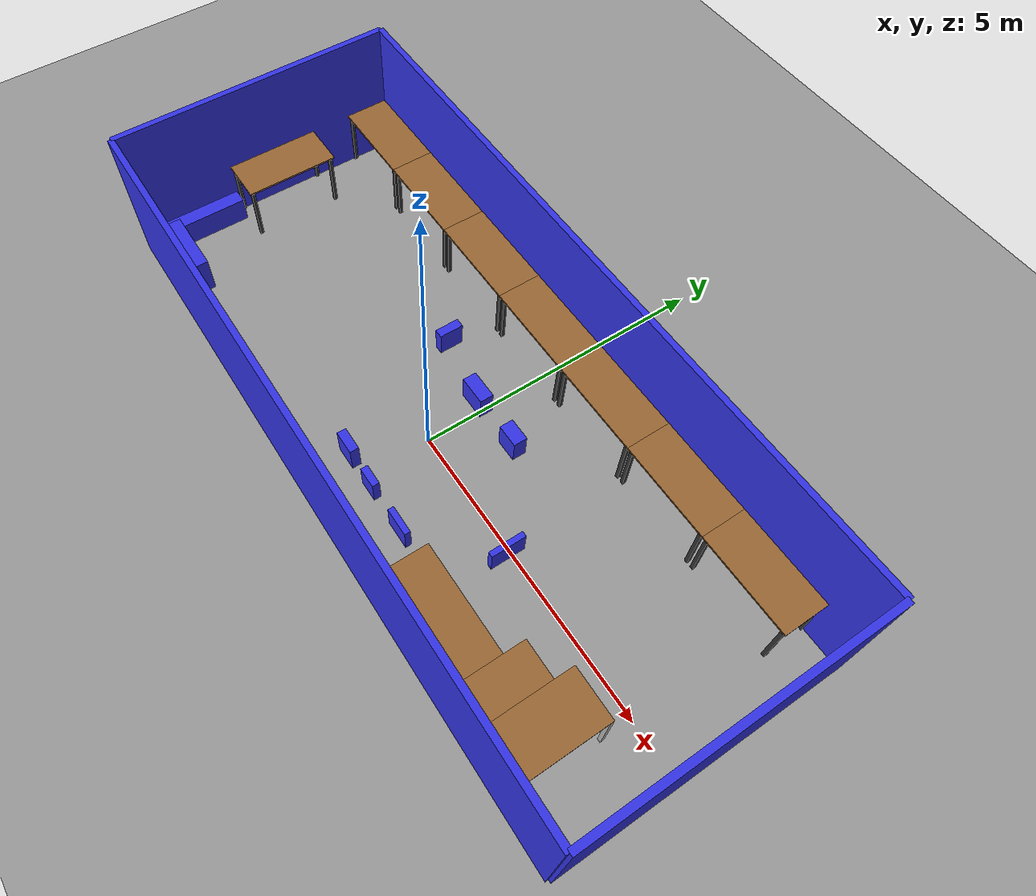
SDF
<?xml version="1.0" ?>
<sdf version="1.7">
  <world name="custom_room">

    <!-- PHYSICS -->
    <physics name="real_time_physics" type="dart">
      <max_step_size>0.001</max_step_size>
      <real_time_factor>1.0</real_time_factor>
      <real_time_update_rate>1000</real_time_update_rate>
      <gravity>0 0 -9.81</gravity>
    </physics>

    <plugin filename="gz-sim-physics-system" name="gz::sim::systems::Physics">
      <engine>dart</engine>
    </plugin>
    <plugin filename="gz-sim-synchronize-system" name="gz::sim::systems::Synchronize">
      <use_sim_time>true</use_sim_time>
    </plugin>
    <plugin filename="gz-sim-user-commands-system" name="gz::sim::systems::UserCommands"/>
    <plugin filename="gz-sim-scene-broadcaster-system" name="gz::sim::systems::SceneBroadcaster"/>
    <plugin filename="gz-sim-sensors-system" name="gz::sim::systems::Sensors">
      <render_engine>ogre2</render_engine>
      <update_rate>1000</update_rate>
    </plugin>
    <plugin filename="gz-sim-imu-system" name="gz::sim::systems::Imu"/>

    <!-- LIGHTS -->
    <light type="directional" name="sun">
      <cast_shadows>true</cast_shadows>
      <pose>0 0 10 0 -0.5 0</pose>
      <diffuse>1 1 1 1</diffuse>
      <specular>0.1 0.1 0.1 1</specular>
      <direction>-0.5 0.5 -1</direction>
    </light>

    <light type="point" name="ceiling_light">
      <pose>0 0 5 0 0 0</pose>
      <diffuse>1 1 1 1</diffuse>
      <specular>0.2 0.2 0.2 1</specular>
      <attenuation>
        <range>30</range>
        <constant>0.3</constant>
        <linear>0.01</linear>
        <quadratic>0.001</quadratic>
      </attenuation>
      <cast_shadows>true</cast_shadows>
    </light>

    <!-- GROUND -->
    <model name="ground_plane">
      <static>true</static>
      <link name="link">
        <collision name="collision">
          <geometry>
            <plane>
              <normal>0 0 1</normal>
              <size>20 20</size>
            </plane>
          </geometry>
        </collision>
        <visual name="visual">
          <geometry>
            <plane>
              <normal>0 0 1</normal>
              <size>20 20</size>
            </plane>
          </geometry>
          <material>
            <ambient>0.6 0.6 0.6 1</ambient>
            <diffuse>0.6 0.6 0.6 1</diffuse>
          </material>
        </visual>
      </link>
    </model>

    <!-- WALLS (odbicie Y -> -Y) -->
    <model name="wall_left">
      <static>true</static>
      <link name="link">
        <pose>-5.89 0.4 1.25 0 0 0</pose>
        <collision name="collision">
          <geometry><box><size>0.1 4.8 2.5</size></box></geometry>
        </collision>
        <visual name="visual">
          <geometry><box><size>0.1 4.8 2.5</size></box></geometry>
          <material>
            <ambient>0.2 0.2 0.9 1</ambient>
            <diffuse>0.2 0.2 0.9 1</diffuse>
          </material>
        </visual>
      </link>
    </model>

    <model name="wall_right">
      <static>true</static>
      <link name="link">
        <pose>5.89 0.4 1.25 0 0 0</pose>
        <collision name="collision">
          <geometry><box><size>0.1 4.8 2.5</size></box></geometry>
        </collision>
        <visual name="visual">
          <geometry><box><size>0.1 4.8 2.5</size></box></geometry>
          <material>
            <ambient>0.2 0.2 0.9 1</ambient>
            <diffuse>0.2 0.2 0.9 1</diffuse>
          </material>
        </visual>
      </link>
    </model>

    <model name="wall_bottom">
      <static>true</static>
      <link name="link">
        <pose>0 2.8 1.25 0 0 0</pose>
        <collision name="collision">
          <geometry><box><size>11.78 0.1 2.5</size></box></geometry>
        </collision>
        <visual name="visual">
          <geometry><box><size>11.78 0.1 2.5</size></box></geometry>
          <material>
            <ambient>0.2 0.2 0.9 1</ambient>
            <diffuse>0.2 0.2 0.9 1</diffuse>
          </material>
        </visual>
      </link>
    </model>

    <model name="wall_top">
      <static>true</static>
      <link name="link">
        <pose>0 -2.0 1.25 0 0 0</pose>
        <collision name="collision">
          <geometry><box><size>11.78 0.1 2.5</size></box></geometry>
        </collision>
        <visual name="visual">
          <geometry><box><size>11.78 0.1 2.5</size></box></geometry>
          <material>
            <ambient>0.2 0.2 0.9 1</ambient>
            <diffuse>0.2 0.2 0.9 1</diffuse>
          </material>
        </visual>
      </link>
    </model>
    <!-- SINK (zlew) – odbity w osi X (Y -> -Y) -->
    <model name="sink">
      <static>true</static>
      <pose>-5.05 -1.7 0.25 0 0 0</pose>
      <link name="link">
        <collision name="collision">
          <geometry>
            <box><size>1.10 0.50 0.8</size></box>
          </geometry>
        </collision>
        <visual name="visual">
          <geometry>
            <box><size>1.10 0.50 0.8</size></box>
          </geometry>
          <material>
            <ambient>0.2 0.2 0.9 1</ambient>
            <diffuse>0.2 0.2 0.9 1</diffuse>
          </material>
        </visual>
      </link>
    </model>

    <!-- TABLE -->
    <model name="table1_real">
  <static>true</static>

  <!-- BLAT -->
  <link name="top">
    <pose>2.685 -1.56 1.015 0 0 0</pose>
    <collision name="collision">
      <geometry><box><size>1.76 0.88 0.03</size></box></geometry>
    </collision>
    <visual name="visual">
      <geometry><box><size>1.76 0.88 0.03</size></box></geometry>
      <material>
        <ambient>0.6 0.4 0.2 1</ambient>
        <diffuse>0.6 0.4 0.2 1</diffuse>
      </material>
    </visual>
  </link>

  <!-- NOGI -->
  <link name="leg_fl">
    <pose>3.535 -1.15 0.5 0 0 0</pose>
    <collision name="collision"><geometry><box><size>0.06 0.06 1.0</size></box></geometry></collision>
    <visual name="visual"><geometry><box><size>0.06 0.06 1.0</size></box></geometry></visual>
  </link>

  <link name="leg_fr">
    <pose>3.535 -1.97 0.5 0 0 0</pose>
    <collision name="collision"><geometry><box><size>0.06 0.06 1.0</size></box></geometry></collision>
    <visual name="visual"><geometry><box><size>0.06 0.06 1.0</size></box></geometry></visual>
  </link>

  <link name="leg_bl">
    <pose>1.835 -1.15 0.5 0 0 0</pose>
    <collision name="collision"><geometry><box><size>0.06 0.06 1.0</size></box></geometry></collision>
    <visual name="visual"><geometry><box><size>0.06 0.06 1.0</size></box></geometry></visual>
  </link>

  <link name="leg_br">
    <pose>1.835 -1.97 0.5 0 0 0</pose>
    <collision name="collision"><geometry><box><size>0.06 0.06 1.0</size></box></geometry></collision>
    <visual name="visual"><geometry><box><size>0.06 0.06 1.0</size></box></geometry></visual>
  </link>

</model>

    <model name="table2_real">
  <static>true</static>

  <!-- BLAT -->
  <link name="top">
    <pose>3.865 -1.385 1.015 0 0 0</pose>
    <collision name="collision"><geometry><box><size>0.60 1.23 0.03</size></box></geometry></collision>
    <visual name="visual">
      <geometry><box><size>0.60 1.23 0.03</size></box></geometry>
      <material><ambient>0.6 0.4 0.2 1</ambient><diffuse>0.6 0.4 0.2 1</diffuse></material>
    </visual>
  </link>

  <!-- NOGI -->
  <link name="leg_fl">
    <pose>4.135 -0.800 0.5 0 0 0</pose>
    <collision name="collision"><geometry><box><size>0.06 0.06 1.0</size></box></geometry></collision>
    <visual name="visual"><geometry><box><size>0.06 0.06 1.0</size></box></geometry></visual>
  </link>

  <link name="leg_fr">
    <pose>4.135 -1.970 0.5 0 0 0</pose>
    <collision name="collision"><geometry><box><size>0.06 0.06 1.0</size></box></geometry></collision>
    <visual name="visual"><geometry><box><size>0.06 0.06 1.0</size></box></geometry></visual>
  </link>

  <link name="leg_bl">
    <pose>3.595 -0.800 0.5 0 0 0</pose>
    <collision name="collision"><geometry><box><size>0.06 0.06 1.0</size></box></geometry></collision>
    <visual name="visual"><geometry><box><size>0.06 0.06 1.0</size></box></geometry></visual>
  </link>

  <link name="leg_br">
    <pose>3.595 -1.970 0.5 0 0 0</pose>
    <collision name="collision"><geometry><box><size>0.06 0.06 1.0</size></box></geometry></collision>
    <visual name="visual"><geometry><box><size>0.06 0.06 1.0</size></box></geometry></visual>
  </link>

</model>

    <model name="table3_real">
  <static>true</static>

  <!-- BLAT -->
  <link name="top">
    <pose>4.565 -1.225 1.015 0 0 0</pose>
    <collision name="collision"><geometry><box><size>0.80 1.55 0.03</size></box></geometry></collision>
    <visual name="visual">
      <geometry><box><size>0.80 1.55 0.03</size></box></geometry>
      <material><ambient>0.6 0.4 0.2 1</ambient><diffuse>0.6 0.4 0.2 1</diffuse></material>
    </visual>
  </link>

  <!-- NOGI -->
  <link name="leg_fl">
    <pose>4.935 -0.480 0.5 0 0 0</pose>
    <collision name="collision"><geometry><box><size>0.06 0.06 1.0</size></box></geometry></collision>
    <visual name="visual"><geometry><box><size>0.06 0.06 1.0</size></box></geometry></visual>
  </link>

  <link name="leg_fr">
    <pose>4.935 -1.970 0.5 0 0 0</pose>
    <collision name="collision"><geometry><box><size>0.06 0.06 1.0</size></box></geometry></collision>
    <visual name="visual"><geometry><box><size>0.06 0.06 1.0</size></box></geometry></visual>
  </link>

  <link name="leg_bl">
    <pose>4.195 -0.480 0.5 0 0 0</pose>
    <collision name="collision"><geometry><box><size>0.06 0.06 1.0</size></box></geometry></collision>
    <visual name="visual"><geometry><box><size>0.06 0.06 1.0</size></box></geometry></visual>
  </link>

  <link name="leg_br">
    <pose>4.195 -1.970 0.5 0 0 0</pose>
    <collision name="collision"><geometry><box><size>0.06 0.06 1.0</size></box></geometry></collision>
    <visual name="visual"><geometry><box><size>0.06 0.06 1.0</size></box></geometry></visual>
  </link>

</model>

    <!-- BOXES -->
    <model name="box1">
      <static>true</static>
      <pose> -0.415 -1.145 0.25 0 0 0</pose>
      <link name="link">
        <collision name="collision">
          <geometry><box><size>0.39 0.15 0.5</size></box></geometry>
        </collision>
        <visual name="visual">
          <geometry><box><size>0.39 0.15 0.5</size></box></geometry>
          <material>
            <ambient>0.2 0.2 0.9 1</ambient>
            <diffuse>0.2 0.2 0.9 1</diffuse>
          </material>
        </visual>
      </link>
    </model>

    <model name="box2">
      <static>true</static>
      <pose> 0.255 -1.16 0.25 0 0 0</pose>
      <link name="link">
        <collision name="collision">
          <geometry><box><size>0.34 0.12 0.45</size></box></geometry>
        </collision>
        <visual name="visual">
          <geometry><box><size>0.34 0.12 0.45</size></box></geometry>
          <material>
            <ambient>0.2 0.2 0.9 1</ambient>
            <diffuse>0.2 0.2 0.9 1</diffuse>
          </material>
        </visual>
      </link>
    </model>

    <model name="box3">
      <static>true</static>
      <pose> 1.085 -1.17 0.25 0 0 0</pose>
      <link name="link">
        <collision name="collision">
          <geometry><box><size>0.46 0.1 0.45</size></box></geometry>
        </collision>
        <visual name="visual">
          <geometry><box><size>0.46 0.1 0.45</size></box></geometry>
          <material>
            <ambient>0.2 0.2 0.9 1</ambient>
            <diffuse>0.2 0.2 0.9 1</diffuse>
          </material>
        </visual>
      </link>
    </model>

    <model name="box4">
  <static>true</static>
  <pose>-5.74 -1.15 0.225 0 0 -1.57</pose>
  <link name="link">
    <collision name="collision">
      <geometry>
        <box><size>1.7 0.3 0.45</size></box>
      </geometry>
    </collision>
    <visual name="visual">
      <geometry>
        <box><size>1.7 0.3 0.45</size></box>
      </geometry>
      <material>
        <ambient>0.2 0.2 0.9 1</ambient>
        <diffuse>0.2 0.2 0.9 1</diffuse>
      </material>
    </visual>
  </link>
</model>

<model name="box6">
  <static>true</static>
  <pose>2.2 -0.08 0.225 0 0 -1.57</pose>
  <link name="link">
    <collision name="collision">
      <geometry>
        <box><size>0.58 0.09 0.45</size></box>
      </geometry>
    </collision>
    <visual name="visual">
      <geometry>
        <box><size>0.58 0.09 0.45</size></box>
      </geometry>
      <material>
        <ambient>0.2 0.2 0.9 1</ambient>
        <diffuse>0.2 0.2 0.9 1</diffuse>
      </material>
    </visual>
  </link>
</model>

<model name="box7">
  <static>true</static>
  <pose>-1.345 1.235 0.225 0 0 -1.57</pose>
  <link name="link">
    <collision name="collision">
      <geometry>
        <box><size>0.41 0.15 0.45</size></box>
      </geometry>
    </collision>
    <visual name="visual">
      <geometry>
        <box><size>0.41 0.15 0.45</size></box>
      </geometry>
      <material>
        <ambient>0.2 0.2 0.9 1</ambient>
        <diffuse>0.2 0.2 0.9 1</diffuse>
      </material>
    </visual>
  </link>
</model>

<model name="box8">
  <static>true</static>
  <pose>-0.1675 1.005 0.225 0 0 -1.57</pose>
  <link name="link">
    <collision name="collision">
      <geometry>
        <box><size>0.23 0.485 0.45</size></box>
      </geometry>
    </collision>
    <visual name="visual">
      <geometry>
        <box><size>0.23 0.485 0.45</size></box>
      </geometry>
      <material>
        <ambient>0.2 0.2 0.9 1</ambient>
        <diffuse>0.2 0.2 0.9 1</diffuse>
      </material>
    </visual>
  </link>
</model>

<model name="box9">
  <static>true</static>
  <pose>0.78 1.005 0.225 0 0 -1.57</pose>
  <link name="link">
    <collision name="collision">
      <geometry>
        <box><size>0.23 0.38 0.45</size></box>
      </geometry>
    </collision>
    <visual name="visual">
      <geometry>
        <box><size>0.23 0.38 0.45</size></box>
      </geometry>
      <material>
        <ambient>0.2 0.2 0.9 1</ambient>
        <diffuse>0.2 0.2 0.9 1</diffuse>
      </material>
    </visual>
  </link>
</model>

<model name="table_rotated">
  <static>true</static>

  <!-- BLAT -->
  <link name="top">
    <!-- blat jest obrócony o 90° wokół Z -->
    <pose>-5.49 0.5 1.015 0 0 1.57</pose>
    <collision name="collision">
      <geometry>
        <box><size>1.6 0.8 0.03</size></box>
      </geometry>
    </collision>
    <visual name="visual">
      <geometry>
        <box><size>1.6 0.8 0.03</size></box>
      </geometry>
      <material>
        <ambient>0.6 0.4 0.2 1</ambient>
        <diffuse>0.6 0.4 0.2 1</diffuse>
      </material>
    </visual>
  </link>

  <!-- NOGI -->

  <!-- FL -->
  <link name="leg_fl">
    <pose>-5.83 1.24 0.5 0 0 1.57</pose>
    <collision name="collision">
      <geometry><box><size>0.06 0.06 1.0</size></box></geometry>
    </collision>
    <visual name="visual">
      <geometry><box><size>0.06 0.06 1.0</size></box></geometry>
      <material>
        <ambient>0.2 0.2 0.2 1</ambient>
        <diffuse>0.2 0.2 0.2 1</diffuse>
      </material>
    </visual>
  </link>

  <!-- FR -->
  <link name="leg_fr">
    <pose>-5.15 1.24 0.5 0 0 1.57</pose>
    <collision name="collision">
      <geometry><box><size>0.06 0.06 1.0</size></box></geometry>
    </collision>
    <visual name="visual">
      <geometry><box><size>0.06 0.06 1.0</size></box></geometry>
      <material>
        <ambient>0.2 0.2 0.2 1</ambient>
        <diffuse>0.2 0.2 0.2 1</diffuse>
      </material>
    </visual>
  </link>

  <!-- BL -->
  <link name="leg_bl">
    <pose>-5.83 -0.24 0.5 0 0 1.57</pose>
    <collision name="collision">
      <geometry><box><size>0.06 0.06 1.0</size></box></geometry>
    </collision>
    <visual name="visual">
      <geometry><box><size>0.06 0.06 1.0</size></box></geometry>
      <material>
        <ambient>0.2 0.2 0.2 1</ambient>
        <diffuse>0.2 0.2 0.2 1</diffuse>
      </material>
    </visual>
  </link>

  <!-- BR -->
  <link name="leg_br">
    <pose>-5.15 -0.24 0.5 0 0 1.57</pose>
    <collision name="collision">
      <geometry><box><size>0.06 0.06 1.0</size></box></geometry>
    </collision>
    <visual name="visual">
      <geometry><box><size>0.06 0.06 1.0</size></box></geometry>
      <material>
        <ambient>0.2 0.2 0.2 1</ambient>
        <diffuse>0.2 0.2 0.2 1</diffuse>
      </material>
    </visual>
  </link>

</model>

<model name="table_oriented_like_first_shifted">
  <static>true</static>

  <!-- BLAT -->
  <link name="top">
    <pose>-5.09 2.4 1.015 0 0 0</pose>
    <collision name="collision">
      <geometry>
        <box><size>1.6 0.8 0.03</size></box>
      </geometry>
    </collision>
    <visual name="visual">
      <geometry>
        <box><size>1.6 0.8 0.03</size></box>
      </geometry>
      <material>
        <ambient>0.6 0.4 0.2 1</ambient>
        <diffuse>0.6 0.4 0.2 1</diffuse>
      </material>
    </visual>
  </link>

  <!-- NOGI -->

  <!-- Front Left -->
  <link name="leg_fl">
    <pose>-4.35 2.74 0.5 0 0 0</pose>
    <collision name="collision">
      <geometry><box><size>0.06 0.06 1.0</size></box></geometry>
    </collision>
    <visual name="visual">
      <geometry><box><size>0.06 0.06 1.0</size></box></geometry>
      <material><ambient>0.2 0.2 0.2 1</ambient><diffuse>0.2 0.2 0.2 1</diffuse></material>
    </visual>
  </link>

  <!-- Front Right -->
  <link name="leg_fr">
    <pose>-4.35 2.06 0.5 0 0 0</pose>
    <collision name="collision">
      <geometry><box><size>0.06 0.06 1.0</size></box></geometry>
    </collision>
    <visual name="visual">
      <geometry><box><size>0.06 0.06 1.0</size></box></geometry>
      <material><ambient>0.2 0.2 0.2 1</ambient><diffuse>0.2 0.2 0.2 1</diffuse></material>
    </visual>
  </link>

  <!-- Back Left -->
  <link name="leg_bl">
    <pose>-5.83 2.74 0.5 0 0 0</pose>
    <collision name="collision">
      <geometry><box><size>0.06 0.06 1.0</size></box></geometry>
    </collision>
    <visual name="visual">
      <geometry><box><size>0.06 0.06 1.0</size></box></geometry>
      <material><ambient>0.2 0.2 0.2 1</ambient><diffuse>0.2 0.2 0.2 1</diffuse></material>
    </visual>
  </link>

  <!-- Back Right -->
  <link name="leg_br">
    <pose>-5.83 2.06 0.5 0 0 0</pose>
    <collision name="collision">
      <geometry><box><size>0.06 0.06 1.0</size></box></geometry>
    </collision>
    <visual name="visual">
      <geometry><box><size>0.06 0.06 1.0</size></box></geometry>
      <material><ambient>0.2 0.2 0.2 1</ambient><diffuse>0.2 0.2 0.2 1</diffuse></material>
    </visual>
  </link>

</model>

<model name="table_oriented_like_first_shifted2">
  <static>true</static>

  <!-- BLAT -->
  <link name="top">
    <pose>-3.49 2.4 1.015 0 0 0</pose>
    <collision name="collision">
      <geometry>
        <box><size>1.6 0.8 0.03</size></box>
      </geometry>
    </collision>
    <visual name="visual">
      <geometry>
        <box><size>1.6 0.8 0.03</size></box>
      </geometry>
      <material>
        <ambient>0.6 0.4 0.2 1</ambient>
        <diffuse>0.6 0.4 0.2 1</diffuse>
      </material>
    </visual>
  </link>

  <!-- NOGI -->

  <!-- Front Left -->
  <link name="leg_fl">
    <pose>-2.75 2.74 0.5 0 0 0</pose>
    <collision name="collision">
      <geometry><box><size>0.06 0.06 1.0</size></box></geometry>
    </collision>
    <visual name="visual">
      <geometry><box><size>0.06 0.06 1.0</size></box></geometry>
      <material><ambient>0.2 0.2 0.2 1</ambient><diffuse>0.2 0.2 0.2 1</diffuse></material>
    </visual>
  </link>

  <!-- Front Right -->
  <link name="leg_fr">
    <pose>-2.75 2.06 0.5 0 0 0</pose>
    <collision name="collision">
      <geometry><box><size>0.06 0.06 1.0</size></box></geometry>
    </collision>
    <visual name="visual">
      <geometry><box><size>0.06 0.06 1.0</size></box></geometry>
      <material><ambient>0.2 0.2 0.2 1</ambient><diffuse>0.2 0.2 0.2 1</diffuse></material>
    </visual>
  </link>

  <!-- Back Left -->
  <link name="leg_bl">
    <pose>-4.23 2.74 0.5 0 0 0</pose>
    <collision name="collision">
      <geometry><box><size>0.06 0.06 1.0</size></box></geometry>
    </collision>
    <visual name="visual">
      <geometry><box><size>0.06 0.06 1.0</size></box></geometry>
      <material><ambient>0.2 0.2 0.2 1</ambient><diffuse>0.2 0.2 0.2 1</diffuse></material>
    </visual>
  </link>

  <!-- Back Right -->
  <link name="leg_br">
    <pose>-4.23 2.06 0.5 0 0 0</pose>
    <collision name="collision">
      <geometry><box><size>0.06 0.06 1.0</size></box></geometry>
    </collision>
    <visual name="visual">
      <geometry><box><size>0.06 0.06 1.0</size></box></geometry>
      <material><ambient>0.2 0.2 0.2 1</ambient><diffuse>0.2 0.2 0.2 1</diffuse></material>
    </visual>
  </link>

</model>

<model name="table_1">
  <static>true</static>

  <!-- BLAT -->
  <link name="top">
    <pose>-1.89 2.4 1.015 0 0 0</pose>
    <collision name="collision">
      <geometry>
        <box><size>1.6 0.8 0.03</size></box>
      </geometry>
    </collision>
    <visual name="visual">
      <geometry>
        <box><size>1.6 0.8 0.03</size></box>
      </geometry>
      <material>
        <ambient>0.6 0.4 0.2 1</ambient>
        <diffuse>0.6 0.4 0.2 1</diffuse>
      </material>
    </visual>
  </link>

  <!-- NOGI -->
  <link name="leg_fl">
    <pose>-1.15 2.74 0.5 0 0 0</pose>
    <collision name="collision">
      <geometry>
        <box><size>0.06 0.06 1.0</size></box>
      </geometry>
    </collision>
    <visual name="visual">
      <geometry>
        <box><size>0.06 0.06 1.0</size></box>
      </geometry>
      <material>
        <ambient>0.2 0.2 0.2 1</ambient>
        <diffuse>0.2 0.2 0.2 1</diffuse>
      </material>
    </visual>
  </link>

  <link name="leg_fr">
    <pose>-1.15 2.06 0.5 0 0 0</pose>
    <collision name="collision">
      <geometry>
        <box><size>0.06 0.06 1.0</size></box>
      </geometry>
    </collision>
    <visual name="visual">
      <geometry>
        <box><size>0.06 0.06 1.0</size></box>
      </geometry>
      <material>
        <ambient>0.2 0.2 0.2 1</ambient>
        <diffuse>0.2 0.2 0.2 1</diffuse>
      </material>
    </visual>
  </link>

  <link name="leg_bl">
    <pose>-2.63 2.74 0.5 0 0 0</pose>
    <collision name="collision">
      <geometry>
        <box><size>0.06 0.06 1.0</size></box>
      </geometry>
    </collision>
    <visual name="visual">
      <geometry>
        <box><size>0.06 0.06 1.0</size></box>
      </geometry>
      <material>
        <ambient>0.2 0.2 0.2 1</ambient>
        <diffuse>0.2 0.2 0.2 1</diffuse>
      </material>
    </visual>
  </link>

  <link name="leg_br">
    <pose>-2.63 2.06 0.5 0 0 0</pose>
    <collision name="collision">
      <geometry>
        <box><size>0.06 0.06 1.0</size></box>
      </geometry>
    </collision>
    <visual name="visual">
      <geometry>
        <box><size>0.06 0.06 1.0</size></box>
      </geometry>
      <material>
        <ambient>0.2 0.2 0.2 1</ambient>
        <diffuse>0.2 0.2 0.2 1</diffuse>
      </material>
    </visual>
  </link>

</model>

<model name="table_2">
  <static>true</static>

  <!-- BLAT -->
  <link name="top">
    <pose>-0.29 2.4 1.015 0 0 0</pose>
    <collision name="collision">
      <geometry>
        <box><size>1.6 0.8 0.03</size></box>
      </geometry>
    </collision>
    <visual name="visual">
      <geometry>
        <box><size>1.6 0.8 0.03</size></box>
      </geometry>
      <material>
        <ambient>0.6 0.4 0.2 1</ambient>
        <diffuse>0.6 0.4 0.2 1</diffuse>
      </material>
    </visual>
  </link>

  <!-- NOGI -->
  <link name="leg_fl">
    <pose>0.45 2.74 0.5 0 0 0</pose>
    <collision name="collision">
      <geometry>
        <box><size>0.06 0.06 1.0</size></box>
      </geometry>
    </collision>
    <visual name="visual">
      <geometry>
        <box><size>0.06 0.06 1.0</size></box>
      </geometry>
      <material>
        <ambient>0.2 0.2 0.2 1</ambient>
        <diffuse>0.2 0.2 0.2 1</diffuse>
      </material>
    </visual>
  </link>

  <link name="leg_fr">
    <pose>0.45 2.06 0.5 0 0 0</pose>
    <collision name="collision">
      <geometry>
        <box><size>0.06 0.06 1.0</size></box>
      </geometry>
    </collision>
    <visual name="visual">
      <geometry>
        <box><size>0.06 0.06 1.0</size></box>
      </geometry>
      <material>
        <ambient>0.2 0.2 0.2 1</ambient>
        <diffuse>0.2 0.2 0.2 1</diffuse>
      </material>
    </visual>
  </link>

  <link name="leg_bl">
    <pose>-1.03 2.74 0.5 0 0 0</pose>
    <collision name="collision">
      <geometry>
        <box><size>0.06 0.06 1.0</size></box>
      </geometry>
    </collision>
    <visual name="visual">
      <geometry>
        <box><size>0.06 0.06 1.0</size></box>
      </geometry>
      <material>
        <ambient>0.2 0.2 0.2 1</ambient>
        <diffuse>0.2 0.2 0.2 1</diffuse>
      </material>
    </visual>
  </link>

  <link name="leg_br">
    <pose>-1.03 2.06 0.5 0 0 0</pose>
    <collision name="collision">
      <geometry>
        <box><size>0.06 0.06 1.0</size></box>
      </geometry>
    </collision>
    <visual name="visual">
      <geometry>
        <box><size>0.06 0.06 1.0</size></box>
      </geometry>
      <material>
        <ambient>0.2 0.2 0.2 1</ambient>
        <diffuse>0.2 0.2 0.2 1</diffuse>
      </material>
    </visual>
  </link>

</model>

<model name="table_3">
  <static>true</static>

  <!-- BLAT -->
  <link name="top">
    <pose>1.31 2.4 1.015 0 0 0</pose>
    <collision name="collision">
      <geometry>
        <box><size>1.6 0.8 0.03</size></box>
      </geometry>
    </collision>
    <visual name="visual">
      <geometry>
        <box><size>1.6 0.8 0.03</size></box>
      </geometry>
      <material>
        <ambient>0.6 0.4 0.2 1</ambient>
        <diffuse>0.6 0.4 0.2 1</diffuse>
      </material>
    </visual>
  </link>

  <!-- NOGI -->
  <link name="leg_fl">
    <pose>2.05 2.74 0.5 0 0 0</pose>
    <collision name="collision">
      <geometry>
        <box><size>0.06 0.06 1.0</size></box>
      </geometry>
    </collision>
    <visual name="visual">
      <geometry>
        <box><size>0.06 0.06 1.0</size></box>
      </geometry>
      <material>
        <ambient>0.2 0.2 0.2 1</ambient>
        <diffuse>0.2 0.2 0.2 1</diffuse>
      </material>
    </visual>
  </link>

  <link name="leg_fr">
    <pose>2.05 2.06 0.5 0 0 0</pose>
    <collision name="collision">
      <geometry>
        <box><size>0.06 0.06 1.0</size></box>
      </geometry>
    </collision>
    <visual name="visual">
      <geometry>
        <box><size>0.06 0.06 1.0</size></box>
      </geometry>
      <material>
        <ambient>0.2 0.2 0.2 1</ambient>
        <diffuse>0.2 0.2 0.2 1</diffuse>
      </material>
    </visual>
  </link>

  <link name="leg_bl">
    <pose>0.57 2.74 0.5 0 0 0</pose>
    <collision name="collision">
      <geometry>
        <box><size>0.06 0.06 1.0</size></box>
      </geometry>
    </collision>
    <visual name="visual">
      <geometry>
        <box><size>0.06 0.06 1.0</size></box>
      </geometry>
      <material>
        <ambient>0.2 0.2 0.2 1</ambient>
        <diffuse>0.2 0.2 0.2 1</diffuse>
      </material>
    </visual>
  </link>

  <link name="leg_br">
    <pose>0.57 2.06 0.5 0 0 0</pose>
    <collision name="collision">
      <geometry>
        <box><size>0.06 0.06 1.0</size></box>
      </geometry>
    </collision>
    <visual name="visual">
      <geometry>
        <box><size>0.06 0.06 1.0</size></box>
      </geometry>
      <material>
        <ambient>0.2 0.2 0.2 1</ambient>
        <diffuse>0.2 0.2 0.2 1</diffuse>
      </material>
    </visual>
  </link>

</model>

<model name="table_4">
  <static>true</static>

  <!-- BLAT -->
  <link name="top">
    <pose>2.91 2.4 1.015 0 0 0</pose>
    <collision name="collision">
      <geometry>
        <box><size>1.6 0.8 0.03</size></box>
      </geometry>
    </collision>
    <visual name="visual">
      <geometry>
        <box><size>1.6 0.8 0.03</size></box>
      </geometry>
      <material>
        <ambient>0.6 0.4 0.2 1</ambient>
        <diffuse>0.6 0.4 0.2 1</diffuse>
      </material>
    </visual>
  </link>

  <!-- NOGI -->
  <link name="leg_fl">
    <pose>3.65 2.74 0.5 0 0 0</pose>
    <collision name="collision">
      <geometry>
        <box><size>0.06 0.06 1.0</size></box>
      </geometry>
    </collision>
    <visual name="visual">
      <geometry>
        <box><size>0.06 0.06 1.0</size></box>
      </geometry>
      <material>
        <ambient>0.2 0.2 0.2 1</ambient>
        <diffuse>0.2 0.2 0.2 1</diffuse>
      </material>
    </visual>
  </link>

  <link name="leg_fr">
    <pose>3.65 2.06 0.5 0 0 0</pose>
    <collision name="collision">
      <geometry>
        <box><size>0.06 0.06 1.0</size></box>
      </geometry>
    </collision>
    <visual name="visual">
      <geometry>
        <box><size>0.06 0.06 1.0</size></box>
      </geometry>
      <material>
        <ambient>0.2 0.2 0.2 1</ambient>
        <diffuse>0.2 0.2 0.2 1</diffuse>
      </material>
    </visual>
  </link>

  <link name="leg_bl">
    <pose>2.17 2.74 0.5 0 0 0</pose>
    <collision name="collision">
      <geometry>
        <box><size>0.06 0.06 1.0</size></box>
      </geometry>
    </collision>
    <visual name="visual">
      <geometry>
        <box><size>0.06 0.06 1.0</size></box>
      </geometry>
      <material>
        <ambient>0.2 0.2 0.2 1</ambient>
        <diffuse>0.2 0.2 0.2 1</diffuse>
      </material>
    </visual>
  </link>

  <link name="leg_br">
    <pose>2.17 2.06 0.5 0 0 0</pose>
    <collision name="collision">
      <geometry>
        <box><size>0.06 0.06 1.0</size></box>
      </geometry>
    </collision>
    <visual name="visual">
      <geometry>
        <box><size>0.06 0.06 1.0</size></box>
      </geometry>
      <material>
        <ambient>0.2 0.2 0.2 1</ambient>
        <diffuse>0.2 0.2 0.2 1</diffuse>
      </material>
    </visual>
  </link>

</model>

<model name="table_5">
  <static>true</static>

  <!-- BLAT -->
  <link name="top">
    <pose>4.51 2.4 1.015 0 0 0</pose>
    <collision name="collision">
      <geometry>
        <box><size>1.6 0.8 0.03</size></box>
      </geometry>
    </collision>
    <visual name="visual">
      <geometry>
        <box><size>1.6 0.8 0.03</size></box>
      </geometry>
      <material>
        <ambient>0.6 0.4 0.2 1</ambient>
        <diffuse>0.6 0.4 0.2 1</diffuse>
      </material>
    </visual>
  </link>

  <!-- NOGI -->

  <link name="leg_fl">
    <pose>5.25 2.74 0.5 0 0 0</pose>
    <collision name="collision">
      <geometry><box><size>0.06 0.06 1.0</size></box></geometry>
    </collision>
    <visual name="visual">
      <geometry><box><size>0.06 0.06 1.0</size></box></geometry>
      <material><ambient>0.2 0.2 0.2 1</ambient><diffuse>0.2 0.2 0.2 1</diffuse></material>
    </visual>
  </link>

  <link name="leg_fr">
    <pose>5.25 2.06 0.5 0 0 0</pose>
    <collision name="collision">
      <geometry><box><size>0.06 0.06 1.0</size></box></geometry>
    </collision>
    <visual name="visual">
      <geometry><box><size>0.06 0.06 1.0</size></box></geometry>
      <material><ambient>0.2 0.2 0.2 1</ambient><diffuse>0.2 0.2 0.2 1</diffuse></material>
    </visual>
  </link>

  <link name="leg_bl">
    <pose>3.77 2.74 0.5 0 0 0</pose>
    <collision name="collision">
      <geometry><box><size>0.06 0.06 1.0</size></box></geometry>
    </collision>
    <visual name="visual">
      <geometry><box><size>0.06 0.06 1.0</size></box></geometry>
      <material><ambient>0.2 0.2 0.2 1</ambient><diffuse>0.2 0.2 0.2 1</diffuse></material>
    </visual>
  </link>

  <link name="leg_br">
    <pose>3.77 2.06 0.5 0 0 0</pose>
    <collision name="collision">
      <geometry><box><size>0.06 0.06 1.0</size></box></geometry>
    </collision>
    <visual name="visual">
      <geometry><box><size>0.06 0.06 1.0</size></box></geometry>
      <material><ambient>0.2 0.2 0.2 1</ambient><diffuse>0.2 0.2 0.2 1</diffuse></material>
    </visual>
  </link>

</model>

    <!-- GUI -->
    <gui fullscreen="0">
      <camera name="user_camera">
        <pose>0 -7 7 0.7 0 1.57</pose>
      </camera>
    </gui>

  </world>
</sdf>
